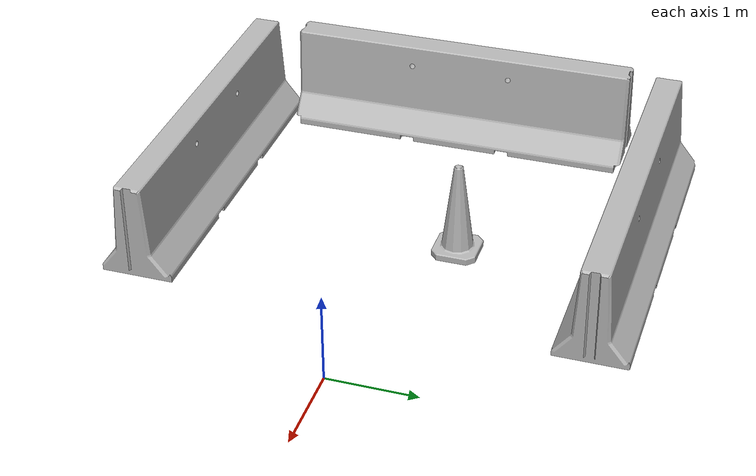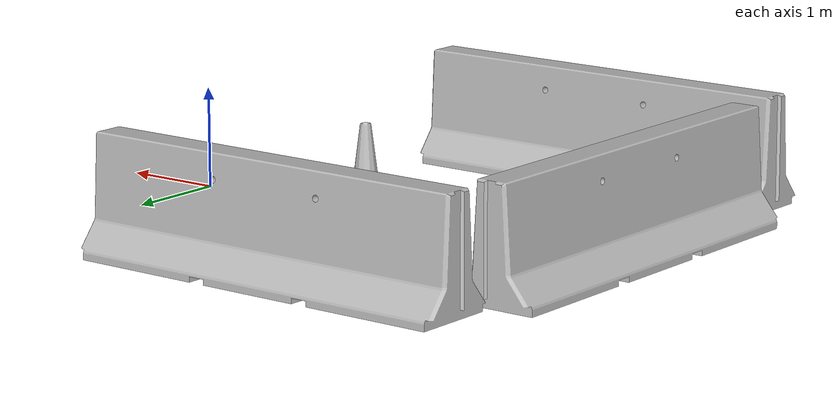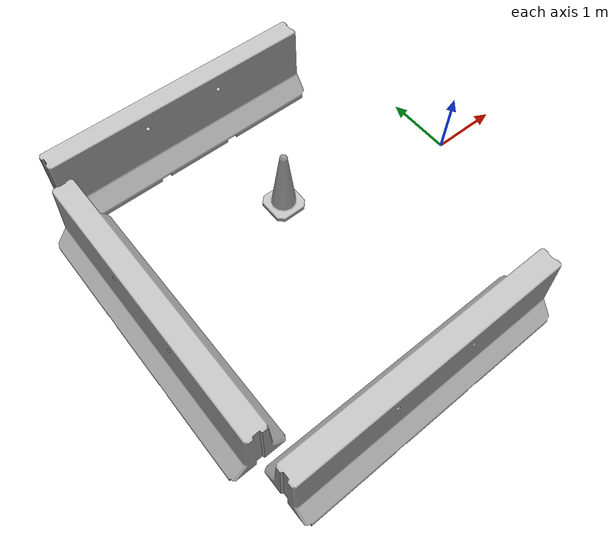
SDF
<sdf version="1.4">
 <world name="default">
  <model name="building_template_model">
   <static>1</static>
   <link name="__default__"><velocity_decay><linear>0</linear><angular>0</angular></velocity_decay></link>
  </model>
  <model name="jersey_barrier_3">
   <static>1</static>
   <link name="link">
    <visual name="visual">
     <geometry><mesh><uri>model://jersey_barrier/meshes/jersey_barrier.dae</uri></mesh></geometry>
    </visual>
    <collision name="upright">
     <pose>0 0 0.5715 0 -0 0</pose>
     <geometry><box><size>4.06542 0.3063 1.143</size></box></geometry>
    </collision>
    <collision name="base">
     <pose>0 0 0.032258 0 -0 0</pose>
     <geometry><box><size>4.06542 0.8107 0.064516</size></box></geometry>
    </collision>
    <collision name="base2">
     <pose>0 0 0.1 0 -0 0</pose>
     <geometry><box><size>4.06542 0.65 0.1</size></box></geometry>
    </collision>
    <collision name="base3">
     <pose>0 0 0.2 0 -0 0</pose>
     <geometry><box><size>4.06542 0.5 0.1</size></box></geometry>
    </collision>
    <collision name="left-angle">
     <pose>0 -0.224 0.2401 0.9 -0 0</pose>
     <geometry><box><size>4.06542 0.5 0.064516</size></box></geometry>
    </collision>
    <collision name="right-angle">
     <pose>0 0.224 0.2401 -0.9 0 0</pose>
     <geometry><box><size>4.06542 0.5 0.064516</size></box></geometry>
    </collision>
    <velocity_decay><linear>0</linear><angular>0</angular></velocity_decay>
   </link>
   <pose>-3 -2.51886 0 0 -0 0</pose>
  </model>
  <model name="jersey_barrier_6">
   <static>1</static>
   <link name="link">
    <visual name="visual">
     <geometry><mesh><uri>model://jersey_barrier/meshes/jersey_barrier.dae</uri></mesh></geometry>
    </visual>
    <collision name="upright">
     <pose>0 0 0.5715 0 -0 0</pose>
     <geometry><box><size>4.06542 0.3063 1.143</size></box></geometry>
    </collision>
    <collision name="base">
     <pose>0 0 0.032258 0 -0 0</pose>
     <geometry><box><size>4.06542 0.8107 0.064516</size></box></geometry>
    </collision>
    <collision name="base2">
     <pose>0 0 0.1 0 -0 0</pose>
     <geometry><box><size>4.06542 0.65 0.1</size></box></geometry>
    </collision>
    <collision name="base3">
     <pose>0 0 0.2 0 -0 0</pose>
     <geometry><box><size>4.06542 0.5 0.1</size></box></geometry>
    </collision>
    <collision name="left-angle">
     <pose>0 -0.224 0.2401 0.9 -0 0</pose>
     <geometry><box><size>4.06542 0.5 0.064516</size></box></geometry>
    </collision>
    <collision name="right-angle">
     <pose>0 0.224 0.2401 -0.9 0 0</pose>
     <geometry><box><size>4.06542 0.5 0.064516</size></box></geometry>
    </collision>
    <velocity_decay><linear>0</linear><angular>0</angular></velocity_decay>
   </link>
   <pose>-3 2.47394 0 0 -0 0</pose>
  </model>
  <model name="jersey_barrier_7">
   <static>1</static>
   <link name="link">
    <visual name="visual">
     <geometry><mesh><uri>model://jersey_barrier/meshes/jersey_barrier.dae</uri></mesh></geometry>
    </visual>
    <collision name="upright">
     <pose>0 0 0.5715 0 -0 0</pose>
     <geometry><box><size>4.06542 0.3063 1.143</size></box></geometry>
    </collision>
    <collision name="base">
     <pose>0 0 0.032258 0 -0 0</pose>
     <geometry><box><size>4.06542 0.8107 0.064516</size></box></geometry>
    </collision>
    <collision name="base2">
     <pose>0 0 0.1 0 -0 0</pose>
     <geometry><box><size>4.06542 0.65 0.1</size></box></geometry>
    </collision>
    <collision name="base3">
     <pose>0 0 0.2 0 -0 0</pose>
     <geometry><box><size>4.06542 0.5 0.1</size></box></geometry>
    </collision>
    <collision name="left-angle">
     <pose>0 -0.224 0.2401 0.9 -0 0</pose>
     <geometry><box><size>4.06542 0.5 0.064516</size></box></geometry>
    </collision>
    <collision name="right-angle">
     <pose>0 0.224 0.2401 -0.9 0 0</pose>
     <geometry><box><size>4.06542 0.5 0.064516</size></box></geometry>
    </collision>
    <velocity_decay><linear>0</linear><angular>0</angular></velocity_decay>
   </link>
   <pose>-5 0 0 0 -0 1.57663</pose>
  </model>
  <model name="Construction Cone">
   <link name="link">
    <collision name="collision">
     <geometry>
      <mesh><scale>10 10 10</scale><uri>model://construction_cone/meshes/construction_cone.dae</uri></mesh>
     </geometry>
    </collision>
    <visual name="visual">
     <geometry>
      <mesh><scale>10 10 10</scale><uri>model://construction_cone/meshes/construction_cone.dae</uri></mesh>
     </geometry>
    </visual>
    <velocity_decay><linear>0</linear><angular>0</angular></velocity_decay>
    <inertial>
     <inertia><ixx>1</ixx><ixy>0</ixy><ixz>0</ixz><iyy>1</iyy><iyz>0</iyz><izz>1</izz></inertia>
     <mass>1</mass>
    </inertial>
   </link>
   <pose>-2.53077 0.64975 -0.000878 6e-06 1e-06 -1e-06</pose>
   <static>0</static>
  </model>
 </world>
</sdf>
